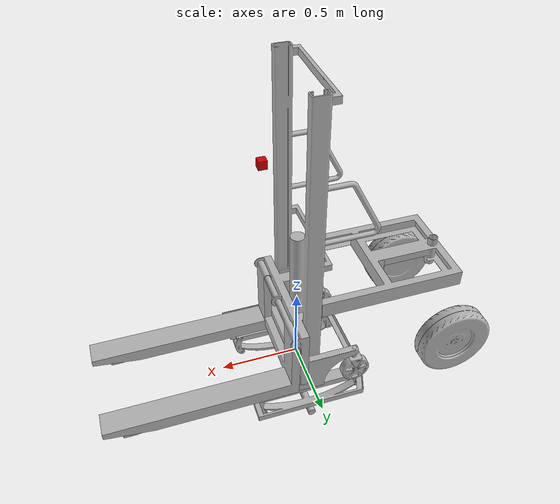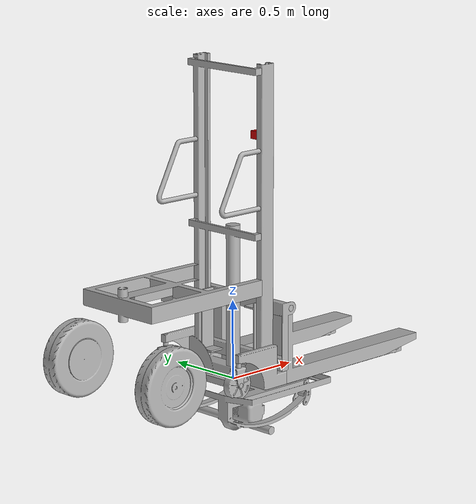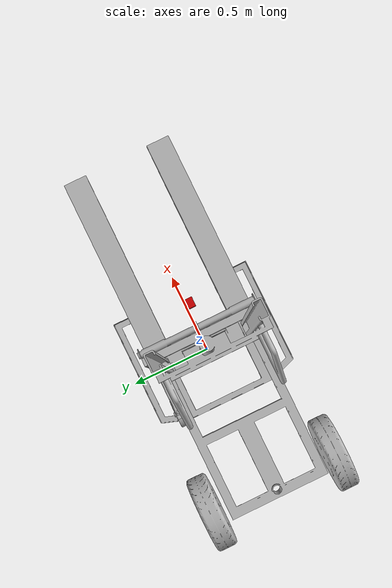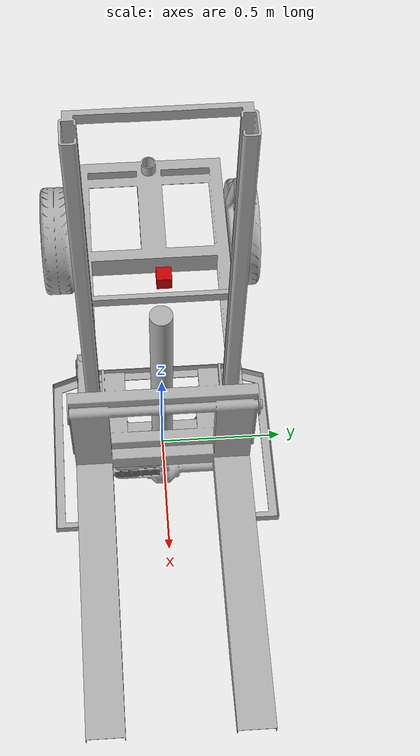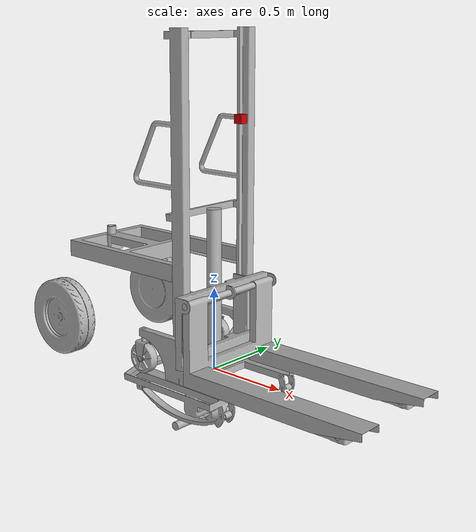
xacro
<?xml version="1.0" ?>
<robot name="model" xmlns:xacro="http://www.ros.org/wiki/xacro">

<xacro:include filename="$(find model_description)/urdf/materials.xacro" />
<xacro:include filename="$(find model_description)/urdf/model.ros2control" />
<xacro:include filename="$(find model_description)/urdf/model.gazebo" />
<xacro:include filename="$(find model_description)/urdf/camera.xacro" />

<link name="base_footprint"></link>

<joint name="base_joint" type="fixed">
  <parent link="base_footprint"/>
  <child link="base_link"/>
  <origin xyz="0.0 0.0 0.010" rpy="0 0 0"/>
</joint>

<link name="base_link">
  <inertial>
    <origin xyz="0.058268932725645046 5.2977171567329385e-05 0.727540488639707" rpy="0 0 0"/>
    <mass value="17.8126449840257"/>
    <inertia ixx="6.934301" iyy="7.211008" izz="2.123225" ixy="0.000338" iyz="0.00046" ixz="1.178057"/>
  </inertial>
  <visual>
    <origin xyz="0 0 0" rpy="0 0 0"/>
    <geometry>
      <mesh filename="package://model_description/meshes/base_link.stl" scale="0.001 0.001 0.001"/>
    </geometry>
    <material name="silver"/>
  </visual>
</link>

<link name="stacker_slider_1">
  <inertial>
    <origin xyz="-0.013466560993404583 0.2572823159739083 -1.6689840557999553" rpy="0 0 0"/>
    <mass value="2.158204417874895"/>
    <inertia ixx="0.17152" iyy="0.054313" izz="0.126927" ixy="-3.9e-05" iyz="-0.000468" ixz="-0.00104"/>
  </inertial>
  <visual>
    <origin xyz="-0.05 0.256 -1.99" rpy="0 0 0"/>
    <geometry>
      <mesh filename="package://model_description/meshes/stacker_slider_1.stl" scale="0.001 0.001 0.001"/>
    </geometry>
    <material name="silver"/>
  </visual>
  <collision>
    <origin xyz="-0.05 0.256 -1.99" rpy="0 0 0"/>
    <geometry>
      <mesh filename="package://model_description/meshes/stacker_slider_1.stl" scale="0.001 0.001 0.001"/>
    </geometry>
  </collision>
</link>

<link name="stacker_fork_1">
  <inertial>
    <origin xyz="0.09916634957104192 0.37114014282073293 -0.21646507194627185" rpy="0 0 0"/>
    <mass value="8.37653098650869"/>
    <inertia ixx="0.832862" iyy="0.734326" izz="1.204215" ixy="0.000947" iyz="-0.002067" ixz="0.159217"/>
  </inertial>
  <visual>
    <origin xyz="-0.125 0.375 -0.49" rpy="0 0 0"/>
    <geometry>
      <mesh filename="package://model_description/meshes/stacker_fork_1.stl" scale="0.001 0.001 0.001"/>
    </geometry>
    <material name="silver"/>
  </visual>
  <collision>
    <origin xyz="-0.125 0.375 -0.49" rpy="0 0 0"/>
    <geometry>
      <mesh filename="package://model_description/meshes/stacker_fork_1.stl" scale="0.001 0.001 0.001"/>
    </geometry>
  </collision>
</link>

<link name="r_caster_1">
  <inertial>
    <origin xyz="-0.005926729995574753 -6.024346577149231e-10 -0.08540642916490254" rpy="0 0 0"/>
    <mass value="0.13643173338288486"/>
    <inertia ixx="0.000369" iyy="0.000354" izz="9e-05" ixy="0.0" iyz="-0.0" ixz="-3.3e-05"/>
  </inertial>
  <visual>
    <origin xyz="0.265391 0.32 -0.265" rpy="0 0 0"/>
    <geometry>
      <mesh filename="package://model_description/meshes/r_caster_1.stl" scale="0.001 0.001 0.001"/>
    </geometry>
    <material name="silver"/>
  </visual>
  <collision>
    <origin xyz="0.265391 0.32 -0.265" rpy="0 0 0"/>
    <geometry>
      <mesh filename="package://model_description/meshes/r_caster_1.stl" scale="0.001 0.001 0.001"/>
    </geometry>
  </collision>
</link>

<link name="l_caster_1">
  <inertial>
    <origin xyz="-0.00592651973504249 -6.024346022037719e-10 -0.08540642916490221" rpy="0 0 0"/>
    <mass value="0.13643173338288483"/>
    <inertia ixx="0.000369" iyy="0.000354" izz="9e-05" ixy="0.0" iyz="-0.0" ixz="-3.3e-05"/>
  </inertial>
  <visual>
    <origin xyz="0.27 -0.32 -0.265" rpy="0 0 0"/>
    <geometry>
      <mesh filename="package://model_description/meshes/l_caster_1.stl" scale="0.001 0.001 0.001"/>
    </geometry>
    <material name="silver"/>
  </visual>
  <collision>
    <origin xyz="0.27 -0.32 -0.265" rpy="0 0 0"/>
    <geometry>
      <mesh filename="package://model_description/meshes/l_caster_1.stl" scale="0.001 0.001 0.001"/>
    </geometry>
  </collision>
</link>

<link name="r_caster_wheel_1">
  <inertial>
    <origin xyz="-2.1026053198536232e-07 0.03499999999999992 -9.71445146547012e-17" rpy="0 0 0"/>
    <mass value="0.9633599527692169"/>
    <inertia ixx="0.002258" iyy="0.004173" izz="0.002258" ixy="-0.0" iyz="-0.0" ixz="0.0"/>
  </inertial>
  <visual>
    <origin xyz="0.275391 0.35 -0.08" rpy="0 0 0"/>
    <geometry>
      <mesh filename="package://model_description/meshes/r_caster_wheel_1.stl" scale="0.001 0.001 0.001"/>
    </geometry>
    <material name="silver"/>
  </visual>
  <collision>
    <origin xyz="0.275391 0.35 -0.08" rpy="0 0 0"/>
    <geometry>
      <mesh filename="package://model_description/meshes/r_caster_wheel_1.stl" scale="0.001 0.001 0.001"/>
    </geometry>
  </collision>
</link>

<link name="l_caster_wheel_1">
  <inertial>
    <origin xyz="5.551115123125783e-17 0.03500000000000003 4.3021142204224816e-16" rpy="0 0 0"/>
    <mass value="0.9633599527692169"/>
    <inertia ixx="0.002258" iyy="0.004173" izz="0.002258" ixy="0.0" iyz="0.0" ixz="0.0"/>
  </inertial>
  <visual>
    <origin xyz="0.28 -0.29 -0.08" rpy="0 0 0"/>
    <geometry>
      <mesh filename="package://model_description/meshes/l_caster_wheel_1.stl" scale="0.001 0.001 0.001"/>
    </geometry>
    <material name="silver"/>
  </visual>
  <collision>
    <origin xyz="0.28 -0.29 -0.08" rpy="0 0 0"/>
    <geometry>
      <mesh filename="package://model_description/meshes/l_caster_wheel_1.stl" scale="0.001 0.001 0.001"/>
    </geometry>
  </collision>
</link>

<link name="r_static_wheel_1">
  <inertial>
    <origin xyz="-2.220446049250313e-16 0.04999999999999977 -1.0061396160665481e-16" rpy="0 0 0"/>
    <mass value="0.322264574405241"/>
    <inertia ixx="0.000266" iyy="0.000208" izz="0.000266" ixy="0.0" iyz="0.0" ixz="0.0"/>
  </inertial>
  <visual>
    <origin xyz="-1.14 0.34 -0.027" rpy="0 0 0"/>
    <geometry>
      <mesh filename="package://model_description/meshes/r_static_wheel_1.stl" scale="0.001 0.001 0.001"/>
    </geometry>
    <material name="silver"/>
  </visual>
  <collision>
    <origin xyz="-1.14 0.34 -0.027" rpy="0 0 0"/>
    <geometry>
      <mesh filename="package://model_description/meshes/r_static_wheel_1.stl" scale="0.001 0.001 0.001"/>
    </geometry>
  </collision>
</link>

<link name="l_static_wheel_1">
  <inertial>
    <origin xyz="-2.220446049250313e-16 -0.050000000000000544 -1.2836953722228372e-16" rpy="0 0 0"/>
    <mass value="0.322264574405241"/>
    <inertia ixx="0.000266" iyy="0.000208" izz="0.000266" ixy="0.0" iyz="0.0" ixz="0.0"/>
  </inertial>
  <visual>
    <origin xyz="-1.14 -0.34 -0.027" rpy="0 0 0"/>
    <geometry>
      <mesh filename="package://model_description/meshes/l_static_wheel_1.stl" scale="0.001 0.001 0.001"/>
    </geometry>
    <material name="silver"/>
  </visual>
  <collision>
    <origin xyz="-1.14 -0.34 -0.027" rpy="0 0 0"/>
    <geometry>
      <mesh filename="package://model_description/meshes/l_static_wheel_1.stl" scale="0.001 0.001 0.001"/>
    </geometry>
  </collision>
</link>

<link name="steer_head_1">
  <inertial>
    <origin xyz="-0.5920522484243218 -0.29000000000059517 -0.3990675887191176" rpy="0 0 0"/>
    <mass value="9.632954680220392"/>
    <inertia ixx="0.447234" iyy="0.67858" izz="1.090345" ixy="0.0" iyz="-0.0" ixz="0.001718"/>
  </inertial>
  <visual>
    <origin xyz="0.05 -0.29 -1.035" rpy="0 0 0"/>
    <geometry>
      <mesh filename="package://model_description/meshes/steer_head_1.stl" scale="0.001 0.001 0.001"/>
    </geometry>
    <material name="silver"/>
  </visual>
</link>

<link name="l_wheel_1">
  <inertial>
    <origin xyz="-3.975279472268056e-08 -0.0561204250420686 -2.6132590674743383e-08" rpy="0 0 0"/>
    <mass value="8.335497772675197"/>
    <inertia ixx="0.1042" iyy="0.188397" izz="0.1042" ixy="0.0" iyz="-0.0" ixz="-0.0"/>
  </inertial>
  <visual>
    <origin xyz="0.902 0.345 -0.225194" rpy="0 0 0"/>
    <geometry>
      <mesh filename="package://model_description/meshes/l_wheel_1.stl" scale="0.001 0.001 0.001"/>
    </geometry>
    <material name="silver"/>
  </visual>
  <collision>
    <origin xyz="0.902 0.345 -0.225194" rpy="0 0 0"/>
    <geometry>
      <mesh filename="package://model_description/meshes/l_wheel_1.stl" scale="0.001 0.001 0.001"/>
    </geometry>
  </collision>
</link>

<link name="r_wheel_1">
  <inertial>
    <origin xyz="3.975264217803698e-08 0.0561204250421648 -2.6132589647787086e-08" rpy="0 0 0"/>
    <mass value="8.335497772675197"/>
    <inertia ixx="0.1042" iyy="0.188397" izz="0.1042" ixy="0.0" iyz="0.0" ixz="0.0"/>
  </inertial>
  <visual>
    <origin xyz="0.902 -0.345 -0.225194" rpy="0 0 0"/>
    <geometry>
      <mesh filename="package://model_description/meshes/r_wheel_1.stl" scale="0.001 0.001 0.001"/>
    </geometry>
    <material name="silver"/>
  </visual>
  <collision>
    <origin xyz="0.902 -0.345 -0.225194" rpy="0 0 0"/>
    <geometry>
      <mesh filename="package://model_description/meshes/r_wheel_1.stl" scale="0.001 0.001 0.001"/>
    </geometry>
  </collision>
</link>

<link name="steering_1">
  <inertial>
    <origin xyz="0.000175198957576006 -0.026843466909504198 -0.2259057384340462" rpy="0 0 0"/>
    <mass value="7.502979344444109"/>
    <inertia ixx="0.248967" iyy="0.21124" izz="0.32283" ixy="0.000231" iyz="0.002116" ixz="0.001067"/>
  </inertial>
  <visual>
    <origin xyz="0.902 -0.0 -0.533053" rpy="0 0 0"/>
    <geometry>
      <mesh filename="package://model_description/meshes/steering_1.stl" scale="0.001 0.001 0.001"/>
    </geometry>
    <material name="silver"/>
  </visual>
</link>

<link name="camera_link">
  <inertial>
    <origin xyz="0.0 0.0 0.0" rpy="0 0 0"/>
    <mass value="0.1"/>
    <inertia ixx="0.0001" iyy="0.0001" izz="0.0001" ixy="0.0" iyz="0.0" ixz="0.0"/>
  </inertial>
  <visual>
    <origin xyz="0.2 0.0 1.5" rpy="0 0 0"/>
    <geometry>
      <box size="0.05 0.05 0.05"/>
    </geometry>
    <material name="red"/>
  </visual>
  <collision>
    <origin xyz="0.2 0.0 1.5" rpy="0 0 0"/>
    <geometry>
      <box size="0.05 0.05 0.05"/>
    </geometry>
  </collision>
</link>

<joint name="lift_joint" type="prismatic">
  <origin xyz="0.05 -0.256 1.99" rpy="0 0 0"/>
  <parent link="base_link"/>
  <child link="stacker_slider_1"/>
  <axis xyz="0.0 0.0 1.0"/>
  <limit upper="1.0" lower="0.0" effort="100" velocity="100"/>
</joint>

<joint name="Rigid 2" type="fixed">
  <origin xyz="0.075 -0.119 -1.5" rpy="0 0 0"/>
  <parent link="stacker_slider_1"/>
  <child link="stacker_fork_1"/>
</joint>

<joint name="r_caster_joint" type="continuous">
  <origin xyz="-0.265391 -0.32 0.265" rpy="0 0 0"/>
  <parent link="base_link"/>
  <child link="r_caster_1"/>
  <axis xyz="-0.0 0.0 -1.0"/>
</joint>

<joint name="l_caster_joint" type="continuous">
  <origin xyz="-0.27 0.32 0.265" rpy="0 0 0"/>
  <parent link="base_link"/>
  <child link="l_caster_1"/>
  <axis xyz="-0.0 0.0 -1.0"/>
</joint>

<joint name="r_caster_wheel_joint" type="continuous">
  <origin xyz="-0.01 -0.03 -0.185" rpy="0 0 0"/>
  <parent link="r_caster_1"/>
  <child link="r_caster_wheel_1"/>
  <axis xyz="-0.0 -1.0 -0.0"/>
</joint>

<joint name="l_caster_wheel_joint" type="continuous">
  <origin xyz="-0.01 -0.03 -0.185" rpy="0 0 0"/>
  <parent link="l_caster_1"/>
  <child link="l_caster_wheel_1"/>
  <axis xyz="-0.0 -1.0 -0.0"/>
</joint>

<joint name="r_static_wheel_joint" type="continuous">
  <origin xyz="1.14 -0.34 0.027" rpy="0 0 0"/>
  <parent link="base_link"/>
  <child link="r_static_wheel_1"/>
  <axis xyz="-0.0 -1.0 -0.0"/>
</joint>

<joint name="l_static_wheel_joint" type="continuous">
  <origin xyz="1.14 0.34 0.027" rpy="0 0 0"/>
  <parent link="base_link"/>
  <child link="l_static_wheel_1"/>
  <axis xyz="-0.0 -1.0 -0.0"/>
</joint>

<joint name="Rigid 10" type="fixed">
  <origin xyz="-0.05 0.29 1.035" rpy="0 0 0"/>
  <parent link="base_link"/>
  <child link="steer_head_1"/>
</joint>

<joint name="l_wheel_joint" type="continuous">
  <origin xyz="0.0 -0.345 -0.307859" rpy="0 0 0"/>
  <parent link="steering_1"/>
  <child link="l_wheel_1"/>
  <axis xyz="0.0 -1.0 -0.0"/>
</joint>

<joint name="r_wheel_joint" type="continuous">
  <origin xyz="0.0 0.345 -0.307859" rpy="0 0 0"/>
  <parent link="steering_1"/>
  <child link="r_wheel_1"/>
  <axis xyz="0.0 -1.0 -0.0"/>
</joint>

<joint name="steering_joint" type="revolute">
  <origin xyz="-0.852 -0.29 -0.501947" rpy="0 0 0"/>
  <parent link="steer_head_1"/>
  <child link="steering_1"/>
  <axis xyz="0 0 1"/>
  <limit upper="0.785398163" lower="-0.785398163" effort="100" velocity="3"/>
  <dynamics damping="0.1"/>
</joint>

<!-- custom joint for sensors -->
<joint name="camera_joint" type="fixed">
  <origin xyz="0.0 0.0 0.0" rpy="0 0 0"/>
  <parent link="base_link"/>
  <child link="camera_link"/>
</joint>

</robot>

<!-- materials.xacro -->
<robot name="model" xmlns:xacro="http://www.ros.org/wiki/xacro" >

<material name="silver">
  <color rgba="0.700 0.700 0.700 1.000"/>
</material>

<material name="red">
  <color rgba="0.800 0.000 0.000 1.000"/>
</material>

</robot>

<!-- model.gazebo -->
<robot name="model" xmlns:xacro="http://www.ros.org/wiki/xacro" >

<xacro:property name="body_color" value="Gazebo/Silver" />

<gazebo reference="base_link">
  <material>${body_color}</material>
  <mu1>0.2</mu1>
  <mu2>0.2</mu2>
  <self_collide>true</self_collide>
  <gravity>true</gravity>
</gazebo>

<gazebo reference="steering_1">
  <material>${body_color}</material>
  <mu1>0.2</mu1>
  <mu2>0.2</mu2>
  <self_collide>true</self_collide>
</gazebo>

<gazebo reference="rr_wheel_1">
  <material>${body_color}</material>
  <mu1>0.2</mu1>
  <mu2>0.2</mu2>
  <self_collide>true</self_collide>
</gazebo>

<gazebo reference="lr_wheel_1">
  <material>${body_color}</material>
  <mu1>0.2</mu1>
  <mu2>0.2</mu2>
  <self_collide>true</self_collide>
</gazebo>

<gazebo reference="stacker_1">
  <material>${body_color}</material>
  <mu1>0.2</mu1>
  <mu2>0.2</mu2>
  <self_collide>true</self_collide>
</gazebo>

<gazebo reference="rf_wheel_1">
  <material>${body_color}</material>
  <mu1>0.2</mu1>
  <mu2>0.2</mu2>
  <self_collide>true</self_collide>
</gazebo>

<gazebo reference="lf_wheel_1">
  <material>${body_color}</material>
  <mu1>0.2</mu1>
  <mu2>0.2</mu2>
  <self_collide>true</self_collide>
</gazebo>

<gazebo reference="fork_1">
  <material>${body_color}</material>
  <mu1>0.2</mu1>
  <mu2>0.2</mu2>
  <self_collide>true</self_collide>
</gazebo>

</robot>
